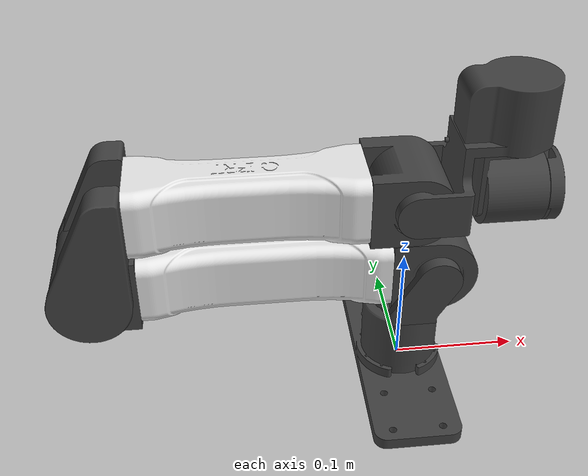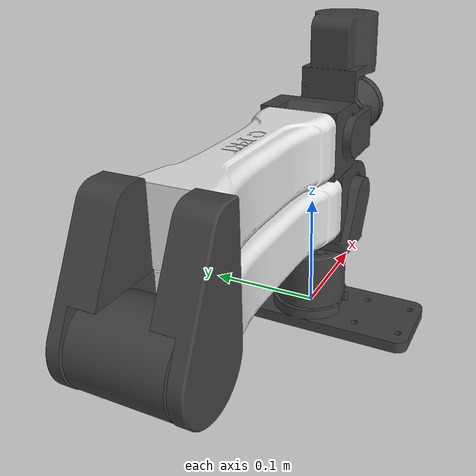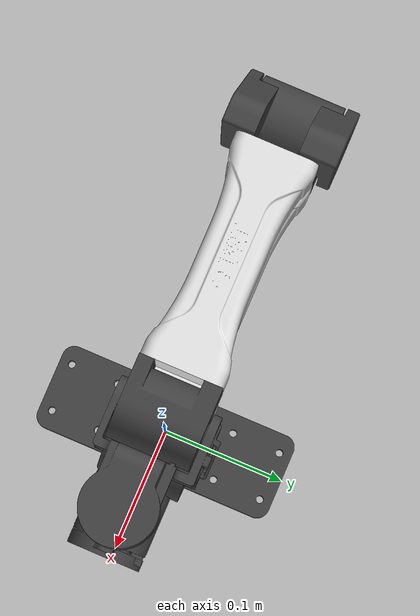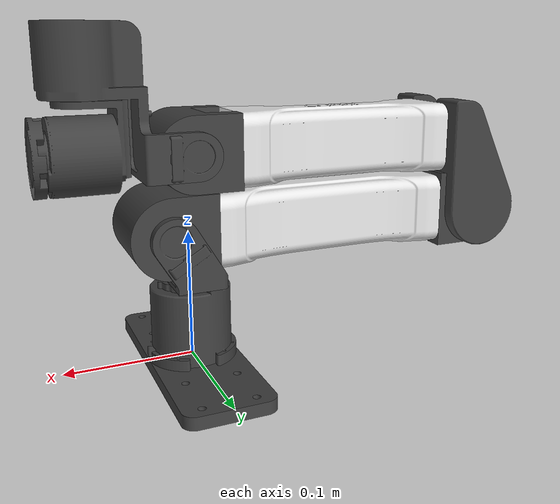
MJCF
<!-- GENERATED by scripts/build_yam_assets.py from teleop_sim/envs/yam_assets.py.
     Do not edit by hand: change the generator and re-run it. -->
<mujoco model="yam_arm">
  <compiler angle="radian" />
  <option integrator="implicitfast" timestep="0.0016666666666666668" />
  <default>
    <default class="yam">
      <position inheritrange="1" />
      <joint frictionloss="0.1" axis="0 0 1" />
      <default class="dm4340">
        <joint armature="0.032" />
        <position kp="40" kv="2.5" forcerange="-28 28" />
      </default>
      <default class="dm4310">
        <joint armature="0.0018" />
        <position kp="10" kv="1" forcerange="-10 10" />
      </default>
      <default class="visual">
        <geom type="mesh" contype="0" conaffinity="0" density="0" group="2" material="black" />
      </default>
      <default class="collision">
        <geom group="3" type="capsule" />
        <default class="sphere_collision">
          <geom size="0.0006 0 0" type="sphere" rgba="1 0 0 1" />
        </default>
      </default>
      <default class="finger">
        <joint type="slide" armature="0.1" frictionloss="0.1" />
        <position ctrlrange="0.0 0.041" kp="100" kv="10" inheritrange="0" />
      </default>
    </default>
  </default>
  <asset>
    <material name="black" rgba="0.25 0.25 0.25 1" />
    <material name="white" rgba="0.9 0.9 0.9 1" />
    <mesh file="upstream/assets/model2.stl" name="model2" />
    <mesh file="upstream/assets/model2__2.stl" name="model2__2" />
    <mesh file="upstream/assets/model2__3.stl" name="model2__3" />
    <mesh file="upstream/assets/model2__4.stl" name="model2__4" />
    <mesh file="upstream/assets/model2__5.stl" name="model2__5" />
    <mesh file="upstream/assets/model2__6.stl" name="model2__6" />
    <mesh file="upstream/assets/model2__7.stl" name="model2__7" />
    <mesh file="upstream/assets/model2__8.stl" name="model2__8" />
    <mesh file="upstream/assets/model2__9.stl" name="model2__9" />
    <mesh file="upstream/assets/model2__10.stl" name="model2__10" />
    <mesh file="upstream/assets/model2__11.stl" name="model2__11" />
    <mesh file="meshes/yam_wrist_motor.stl" name="yam_wrist_motor" />
  </asset>
  <worldbody>
    <body name="arm" childclass="yam">
      <geom class="visual" pos="0 0 -0.0006" quat="1 0 0 1" mesh="model2" />
      <geom class="collision" size="0.033 0.01" pos="0.0 0.0 0.026" quat="1 0 0 0" />
      <body name="link_1" pos="0 0 0.0631" quat="1 0 0 1">
        <inertial pos="-0.00192861 -0.00795735 0.0208176" quat="0.297851 0.642634 0.360045 0.607185" mass="0.12415" diaginertia="0.000180751 0.000145532 5.89179e-05" />
        <joint name="joint1" range="-2.61799 3.05433" class="dm4340" />
        <geom class="visual" pos="5.26159e-07 2.34355e-07 -0.0632" quat="1 0 0 0" mesh="model2__2" />
        <body name="link_2" pos="2.5e-05 -0.02 0.0409" quat="1 1 1 1" gravcomp="1">
          <inertial pos="0.132008 2.10599e-06 0.000293073" quat="1 1 1 1" mass="1.24434" diaginertia="0.0121902 0.0121318 0.000683304" />
          <joint name="joint2" range="0 3.66519" class="dm4340" />
          <geom class="visual" pos="0.0199992 -0.1041 -2.44738e-05" quat="1 -1 -1 -1" mesh="model2__3" />
          <geom class="visual" pos="0.0199992 -0.1041 -2.44738e-05" quat="1 -1 -1 -1" mesh="model2__4" />
          <geom class="visual" pos="0.0199992 -0.1041 -2.44738e-05" quat="1 -1 -1 -1" mesh="model2__5" material="white" />
          <geom class="collision" size="0.032 0.11" pos="0.13 0 0" quat="1 0 1 0" />
          <geom class="collision" size="0.033 0.02" pos="0 0.0 0" quat="1 0 0 0" />
          <geom class="collision" size="0.033 0.025" pos="0.265 0 0" quat="1 0 0 0" />
          <body name="link_3" pos="0.264 0 0" quat="0 1 0 0" gravcomp="1">
            <inertial pos="-0.121816 -0.054846 -0.000111108" quat="1 1 1 1" mass="0.853698" diaginertia="0.00699732 0.00696112 0.000788244" />
            <joint name="joint3" range="0 3.66519" class="dm4340" />
            <geom class="visual" pos="-0.244001 0.104101 2.44738e-05" quat="1 1 1 -1" mesh="model2__6" />
            <geom class="visual" pos="-0.244001 0.104101 2.44738e-05" quat="1 1 1 -1" mesh="model2__7" />
            <geom class="visual" pos="-0.244001 0.104101 2.44738e-05" quat="1 1 1 -1" mesh="model2__8" material="white" />
            <geom class="visual" pos="-0.244001 0.104101 2.44738e-05" quat="1 1 1 -1" mesh="model2__9" />
            <geom class="collision" size="0.034 0.12" pos="-0.14 -0.06 0.0" quat="1 0 1 0" />
            <geom class="collision" size="0.034 0.015" pos="-0.24 -0.06 0.0" quat="1 0 0 0" />
            <body name="link_4" pos="-0.245 -0.06 0" quat="1 0 0 0" gravcomp="1">
              <inertial pos="-0.0769778 -0.0527104 0.000154878" quat="0.667 0.667 -0.236 -0.236" mass="0.463511" diaginertia="0.000791532 0.000744733 0.000282116" />
              <joint name="joint4" range="-1.5708 1.5708" class="dm4310" />
              <geom class="visual" pos="0.00100023 0.164101 2.44738e-05" quat="1 1 1 -1" mesh="model2__10" />
              <geom class="collision" size="0.03 0.015" pos="-0.073 -0.06 0.0" quat="1 1 0 0" />
              <body name="link_5" pos="-0.074 -0.0395 2.5e-05" quat="1 -1 1 1" gravcomp="1">
                <inertial pos="3.64861e-05 0.00025665 0.0353526" quat="1 0 0 0" mass="0.350962" diaginertia="0.000197802 0.0001775 0.000147402" />
                <joint name="joint5" range="-1.5708 1.5708" class="dm4310" />
                <geom class="visual" pos="0 -0.0749971 0.203601" quat="1.32679e-06 1 0 0" mesh="model2__11" />
                <geom class="collision" size="0.030 0.015" pos="0 0.025 0.0395" quat="1 1 0 0" />
                <body name="link_6" pos="0 0.0353 0.0395" quat="1 -1 0 0" gravcomp="1">
                  <inertial pos="-0.000217767 7.37059e-05 0.0270545" quat="1 1 0 0" mass="0.367476" diaginertia="0.000265958 0.000242686 0.000227409" />
                  <joint name="joint6" range="-2.0944 2.0944" class="dm4310" />
                  <geom class="visual" pos="0 -0.164101 -0.110597" quat="1 -1 0 0" mesh="yam_wrist_motor" />
                  <site name="tcp_site" pos="0 0 0" quat="1 0 0 -1" size="0.005" rgba="1 0 0 1" group="4" />
                </body>
              </body>
            </body>
          </body>
        </body>
      </body>
    </body>
  </worldbody>
  <actuator>
    <position name="joint1" joint="joint1" class="dm4340" />
    <position name="joint2" joint="joint2" class="dm4340" />
    <position name="joint3" joint="joint3" class="dm4340" />
    <position name="joint4" joint="joint4" class="dm4310" kp="20" kv=".5" />
    <position name="joint5" joint="joint5" class="dm4310" />
    <position name="joint6" joint="joint6" class="dm4310" />
  </actuator>
</mujoco>
